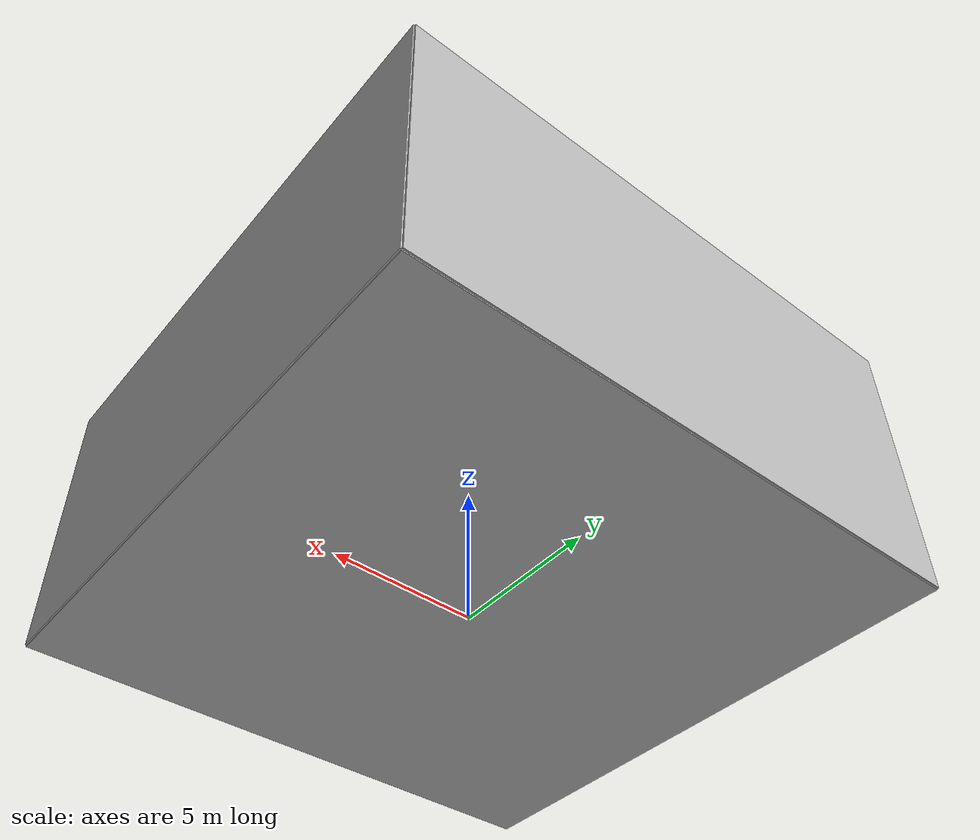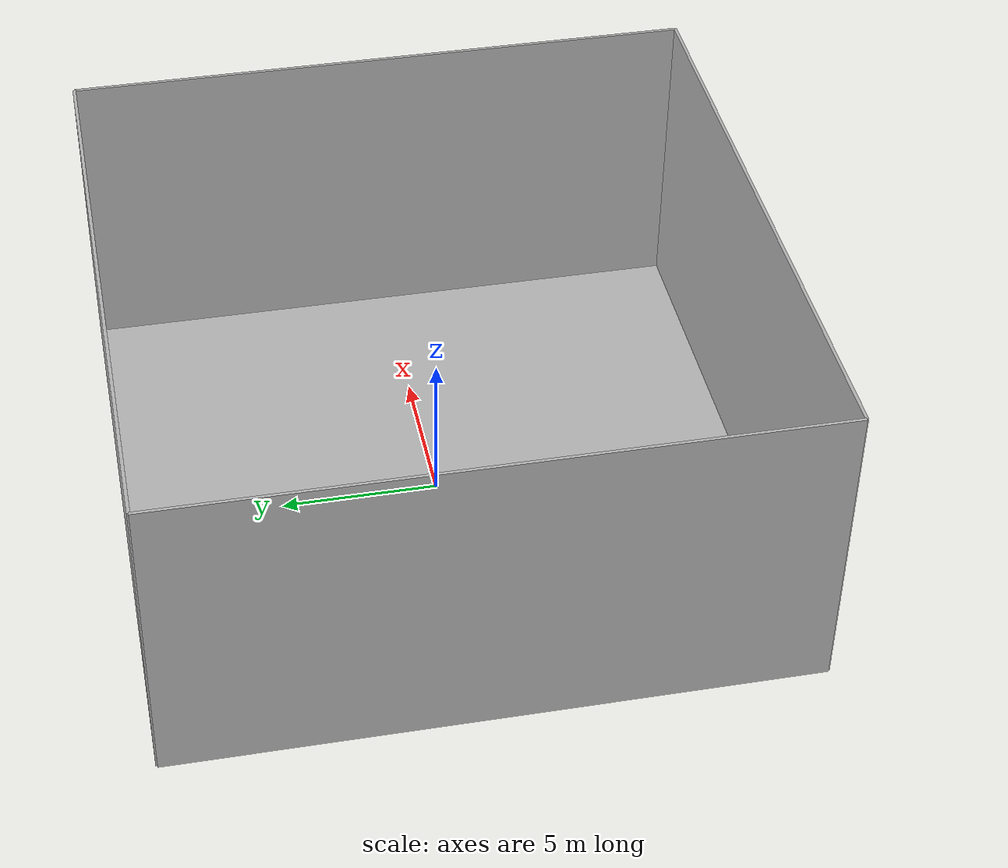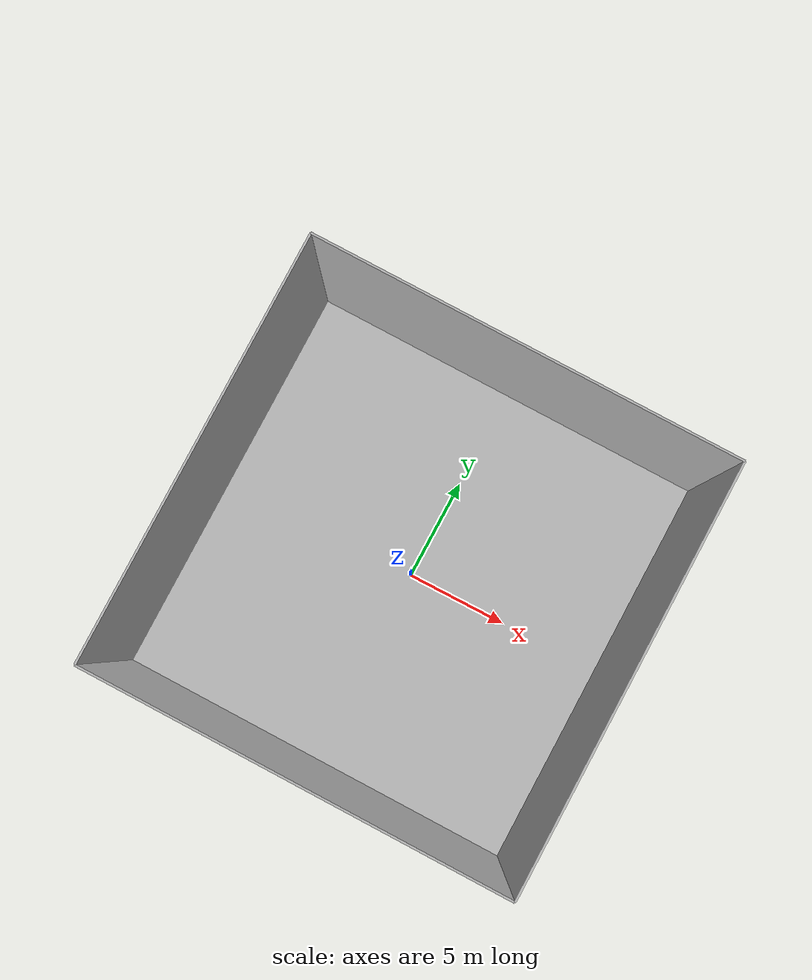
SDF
<?xml version="1.0" ?>
<sdf version="1.5">
  <model name="textured_boundary">
  	<pose>0 0 0 0 0 0</pose>
    <static>true</static>
    <link name="link">
      <collision name="collision1">
        <pose>10 0 5 0 0 0</pose>
        <geometry>
          <box>
            <size>0.1 20 10</size>
          </box>
        </geometry>
      </collision>
      <visual name="visual1">
        <cast_shadows>false</cast_shadows>
        <pose>10 0 5 0 0 0</pose>
        <geometry>
          <box>
            <size>0.1 20 10</size>
          </box>
        </geometry>
        <material>
          <script>
            <uri>model://textured_boundary/materials/scripts</uri>
            <uri>model://textured_boundary/materials/textures</uri>
            <name>wall/1</name>
          </script>
        </material>
      </visual>
      <collision name="collision2">
        <pose>0 10 5 0 0 -1.570796</pose>
        <geometry>
          <box>
            <size>0.1 20 10</size>
          </box>
        </geometry>
      </collision>
      <visual name="visual2">
        <cast_shadows>false</cast_shadows>
        <pose>0 10 5 0 0 1.570796</pose>
        <geometry>
          <box>
            <size>0.1 20 10</size>
          </box>
        </geometry>
        <material>
          <script>
            <uri>model://textured_boundary/materials/scripts</uri>
            <uri>model://textured_boundary/materials/textures</uri>
            <name>wall/2</name>
          </script>
        </material>
      </visual>
      <collision name="collision3">
        <pose>-10 0 5 0 0 0</pose>
        <geometry>
          <box>
            <size>0.1 20 10</size>
          </box>
        </geometry>
      </collision>
      <visual name="visual3">
        <cast_shadows>false</cast_shadows>
        <pose>-10 0 5 0 0 0</pose>
        <geometry>
          <box>
            <size>0.1 20 10</size>
          </box>
        </geometry>
        <material>
          <script>
            <uri>model://textured_boundary/materials/scripts</uri>
            <uri>model://textured_boundary/materials/textures</uri>
            <name>wall/3</name>
          </script>
        </material>
      </visual>
      <collision name="collision4">
        <pose>0 -10 5 0 0 -1.570796</pose>
        <geometry>
          <box>
            <size>0.1 20 10</size>
          </box>
        </geometry>
      </collision>
      <visual name="visual4">
        <cast_shadows>false</cast_shadows>
        <pose>0 -10 5 0 0 1.570796</pose>
        <geometry>
          <box>
            <size>0.1 20 10</size>
          </box>
        </geometry>
        <material>
          <script>
            <uri>model://textured_boundary/materials/scripts</uri>
            <uri>model://textured_boundary/materials/textures</uri>
            <name>wall/4</name>
          </script>
        </material>
      </visual>
      <collision name="ground">
        <pose>0 0 0 0 1.570796 0</pose>
        <geometry>
          <box>
            <size>0.01 20 20</size>
          </box>
        </geometry>
      </collision>
      <visual name="groud_visual">
        <cast_shadows>false</cast_shadows>
        <pose>0 0 0 0 1.570796 0</pose>
        <geometry>
          <box>
            <size>0.1 20 20</size>
          </box>
        </geometry>
        <material>
          <script>
            <uri>model://textured_boundary/materials/scripts</uri>
            <uri>model://textured_boundary/materials/textures</uri>
            <name>ground</name>
          </script>
        </material>
      </visual>
    </link>
  </model>
</sdf>
